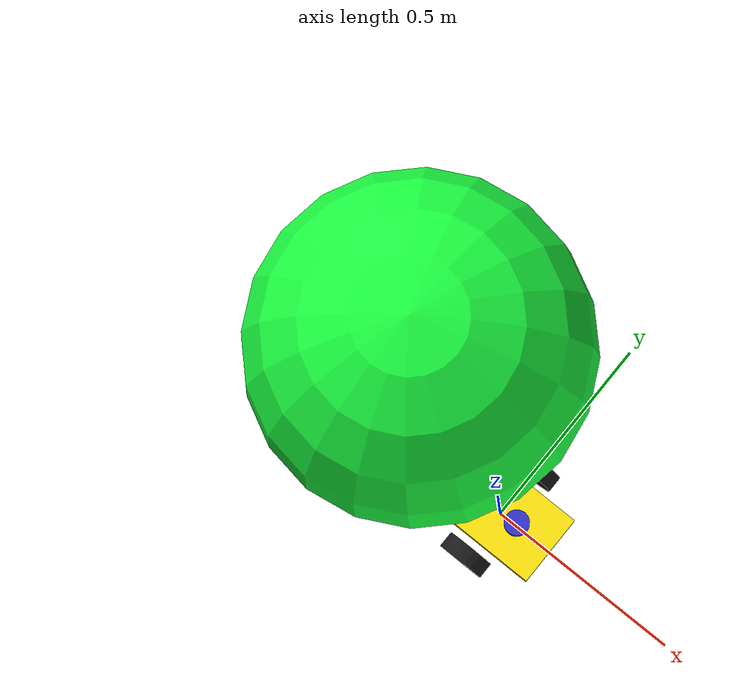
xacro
<?xml version="1.0"?>
<robot name="sewer_robot" xmlns:xacro="http://www.ros.org/wiki/xacro">

  <!-- Dimensions (metres / kg). Defaults chosen Day 2, see PLAN.md "Decisions made". -->
  <xacro:property name="chassis_l" value="0.30"/>
  <xacro:property name="chassis_w" value="0.18"/>
  <xacro:property name="chassis_h" value="0.08"/>
  <xacro:property name="chassis_m" value="4.0"/>
  <xacro:property name="wheel_r"   value="0.06"/>
  <xacro:property name="wheel_w"   value="0.04"/>
  <xacro:property name="wheel_m"   value="0.3"/>
  <xacro:property name="track"     value="0.26"/>  <!-- wheel centre to wheel centre -->
  <xacro:property name="caster_r"  value="0.03"/>
  <xacro:property name="caster_x"  value="0.12"/>
  <xacro:property name="caster_m"  value="0.05"/>

  <xacro:macro name="box_inertia" params="m x y z">
    <inertia ixx="${m*(y*y+z*z)/12}" ixy="0" ixz="0" iyy="${m*(x*x+z*z)/12}" iyz="0" izz="${m*(x*x+y*y)/12}"/>
  </xacro:macro>

  <!-- REP 105: base_footprint (on ground) -> base_link (wheel-axle height) -> sensors/wheels -->
  <link name="base_footprint">
    <inertial><mass value="0.001"/><inertia ixx="1e-6" ixy="0" ixz="0" iyy="1e-6" iyz="0" izz="1e-6"/></inertial>
  </link>

  <joint name="base_joint" type="fixed">
    <parent link="base_footprint"/><child link="base_link"/>
    <origin xyz="0 0 ${wheel_r}" rpy="0 0 0"/>
  </joint>
  <gazebo reference="base_joint"><preserveFixedJoint>true</preserveFixedJoint></gazebo>

  <link name="base_link">
    <visual>
      <origin xyz="0 0 0.01"/>
      <geometry><box size="${chassis_l} ${chassis_w} ${chassis_h}"/></geometry>
      <material name="body"><color rgba="1.0 0.9 0.05 1"/></material>
    </visual>
    <collision>
      <origin xyz="0 0 0.01"/>
      <geometry><box size="${chassis_l} ${chassis_w} ${chassis_h}"/></geometry>
    </collision>
    <inertial>
      <origin xyz="0 0 0.01"/><mass value="${chassis_m}"/>
      <xacro:box_inertia m="${chassis_m}" x="${chassis_l}" y="${chassis_w}" z="${chassis_h}"/>
    </inertial>
  </link>

  <!-- Wheels: continuous joints about y -->
  <xacro:macro name="wheel" params="name y">
    <link name="${name}_wheel_link">
      <visual>
        <origin rpy="${pi/2} 0 0"/>
        <geometry><cylinder radius="${wheel_r}" length="${wheel_w}"/></geometry>
        <material name="tyre"><color rgba="0.1 0.1 0.1 1"/></material>
      </visual>
      <!-- Sphere collision (visual stays a cylinder): a flat cylinder's contact patch scrubs at the
           inner edge when pivoting, shrinking the effective track by ~wheel_w (measured Day 3). -->
      <collision>
        <geometry><sphere radius="${wheel_r}"/></geometry>
      </collision>
      <inertial>
        <mass value="${wheel_m}"/>
        <inertia ixx="${wheel_m*(3*wheel_r*wheel_r+wheel_w*wheel_w)/12}" ixy="0" ixz="0"
                 iyy="${wheel_m*wheel_r*wheel_r/2}" iyz="0"
                 izz="${wheel_m*(3*wheel_r*wheel_r+wheel_w*wheel_w)/12}"/>
      </inertial>
    </link>
    <joint name="${name}_wheel_joint" type="continuous">
      <parent link="base_link"/><child link="${name}_wheel_link"/>
      <origin xyz="0 ${y} 0"/><axis xyz="0 1 0"/>
    </joint>
    <gazebo reference="${name}_wheel_link"><mu1>1.0</mu1><mu2>1.0</mu2></gazebo>
  </xacro:macro>
  <xacro:wheel name="left"  y="${ track/2}"/>
  <xacro:wheel name="right" y="${-track/2}"/>

  <!-- Frictionless ball casters front and back (passive support) -->
  <xacro:macro name="caster" params="name x">
    <link name="${name}_caster_link">
      <collision><geometry><sphere radius="${caster_r}"/></geometry></collision>
      <visual><geometry><sphere radius="${caster_r}"/></geometry></visual>
      <inertial>
        <mass value="${caster_m}"/>
        <inertia ixx="${0.4*caster_m*caster_r*caster_r}" ixy="0" ixz="0" iyy="${0.4*caster_m*caster_r*caster_r}" iyz="0" izz="${0.4*caster_m*caster_r*caster_r}"/>
      </inertial>
    </link>
    <joint name="${name}_caster_joint" type="fixed">
      <parent link="base_link"/><child link="${name}_caster_link"/>
      <origin xyz="${x} 0 ${caster_r-wheel_r}"/>
    </joint>
    <gazebo reference="${name}_caster_link"><mu1>0.0</mu1><mu2>0.0</mu2></gazebo>
  </xacro:macro>
  <xacro:caster name="front" x="${caster_x}"/>
  <xacro:caster name="rear"  x="${-caster_x}"/>

  <!-- IMU at chassis centre -->
  <link name="imu_link"/>
  <joint name="imu_joint" type="fixed">
    <parent link="base_link"/><child link="imu_link"/><origin xyz="0 0 0.02"/>
  </joint>

  <!-- 2D LiDAR on top, slightly forward -->
  <link name="lidar_link">
    <visual><geometry><cylinder radius="0.03" length="0.04"/></geometry>
      <material name="lidar"><color rgba="0.2 0.2 0.8 1"/></material></visual>
  </link>
  <joint name="lidar_joint" type="fixed">
    <parent link="base_link"/><child link="lidar_link"/><origin xyz="0.05 0 0.07"/>
  </joint>

  <link name="beacon_link">
    <visual>
      <origin xyz="0 0 0.8"/>
      <geometry><cylinder radius="0.015" length="1.6"/></geometry>
      <material name="mast"><color rgba="0.9 0.9 0.9 1"/></material>
    </visual>
    <visual>
      <origin xyz="0 0 1.65"/>
      <geometry><sphere radius="0.22"/></geometry>
      <material name="ball"><color rgba="0.1 1.0 0.25 1"/></material>
    </visual>
  </link>
  <joint name="beacon_joint" type="fixed">
    <parent link="base_link"/><child link="beacon_link"/><origin xyz="-0.1 0 0.2"/>
  </joint>

  <link name="camera_link"/>
  <joint name="camera_joint" type="fixed">
    <parent link="base_link"/><child link="camera_link"/><origin xyz="0.16 0 0.05" rpy="0 0.05 0"/>
  </joint>
  <link name="chase_cam_link"/>
  <joint name="chase_cam_joint" type="fixed">
    <parent link="base_link"/><child link="chase_cam_link"/><origin xyz="-0.75 0 0.55" rpy="0 0.5 0"/>
  </joint>

  <!-- ===== Gazebo (SIMULATED) ===== -->
  <gazebo>
    <!-- Wheel odometry + cmd_vel. Odom is integrated from wheel joints; noise/slip injection comes later. -->
    <plugin filename="gz-sim-diff-drive-system" name="gz::sim::systems::DiffDrive">
      <left_joint>left_wheel_joint</left_joint>
      <right_joint>right_wheel_joint</right_joint>
      <wheel_separation>${track}</wheel_separation>
      <wheel_radius>${wheel_r}</wheel_radius>
      <max_linear_acceleration>1.0</max_linear_acceleration>
      <max_angular_acceleration>2.0</max_angular_acceleration>
      <topic>cmd_vel</topic>
      <odom_topic>odom</odom_topic>
      <tf_topic>tf</tf_topic>
      <frame_id>odom</frame_id>
      <child_frame_id>base_footprint</child_frame_id>
      <odom_publish_frequency>50</odom_publish_frequency>
    </plugin>
    <plugin filename="gz-sim-joint-state-publisher-system" name="gz::sim::systems::JointStatePublisher">
      <topic>joint_states</topic>
      <joint_name>left_wheel_joint</joint_name>
      <joint_name>right_wheel_joint</joint_name>
    </plugin>
    <!-- TRUE pose from the physics engine. Evaluation only, never fed to a filter. -->
    <plugin filename="gz-sim-odometry-publisher-system" name="gz::sim::systems::OdometryPublisher">
      <odom_frame>world</odom_frame>
      <robot_base_frame>base_footprint</robot_base_frame>
      <odom_topic>ground_truth/odom</odom_topic>
      <tf_topic>ground_truth/tf</tf_topic>
      <dimensions>2</dimensions>
      <odom_publish_frequency>50</odom_publish_frequency>
    </plugin>
  </gazebo>

  <gazebo reference="imu_link">
    <sensor name="imu" type="imu">
      <always_on>true</always_on>
      <update_rate>100</update_rate>
      <topic>imu</topic>
      <gz_frame_id>imu_link</gz_frame_id>
      <imu>
        <angular_velocity>
          <x><noise type="gaussian"><mean>0</mean><stddev>0.002</stddev></noise></x>
          <y><noise type="gaussian"><mean>0</mean><stddev>0.002</stddev></noise></y>
          <z><noise type="gaussian"><mean>0</mean><stddev>0.002</stddev></noise></z>
        </angular_velocity>
        <linear_acceleration>
          <x><noise type="gaussian"><mean>0</mean><stddev>0.017</stddev></noise></x>
          <y><noise type="gaussian"><mean>0</mean><stddev>0.017</stddev></noise></y>
          <z><noise type="gaussian"><mean>0</mean><stddev>0.017</stddev></noise></z>
        </linear_acceleration>
      </imu>
    </sensor>
  </gazebo>

  <xacro:macro name="contact_sensor" params="link collision">
    <gazebo reference="${link}">
      <sensor name="${link}_contact" type="contact">
        <always_on>true</always_on>
        <update_rate>20</update_rate>
        <contact><collision>${collision}</collision></contact>
      </sensor>
    </gazebo>
  </xacro:macro>
  <xacro:contact_sensor link="base_link" collision="base_link_collision"/>
  <xacro:contact_sensor link="left_wheel_link" collision="left_wheel_link_collision"/>
  <xacro:contact_sensor link="right_wheel_link" collision="right_wheel_link_collision"/>

  <gazebo reference="camera_link">
    <sensor name="robot_cam" type="camera">
      <always_on>true</always_on>
      <update_rate>10</update_rate>
      <topic>robot_cam/image</topic>
      <gz_frame_id>camera_link</gz_frame_id>
      <camera>
        <horizontal_fov>1.5</horizontal_fov>
        <image><width>640</width><height>360</height></image>
        <clip><near>0.05</near><far>30</far></clip>
      </camera>
    </sensor>
  </gazebo>

  <gazebo reference="chase_cam_link">
    <sensor name="chase_cam" type="camera">
      <always_on>true</always_on>
      <update_rate>10</update_rate>
      <topic>chase_cam/image</topic>
      <gz_frame_id>chase_cam_link</gz_frame_id>
      <camera>
        <horizontal_fov>1.2</horizontal_fov>
        <image><width>640</width><height>360</height></image>
        <clip><near>0.05</near><far>40</far></clip>
      </camera>
    </sensor>
  </gazebo>

  <gazebo reference="lidar_link">
    <sensor name="lidar" type="gpu_lidar">
      <always_on>true</always_on>
      <update_rate>10</update_rate>
      <topic>scan</topic>
      <gz_frame_id>lidar_link</gz_frame_id>
      <lidar>
        <scan><horizontal>
          <samples>360</samples><resolution>1</resolution>
          <min_angle>-3.14159</min_angle><max_angle>3.14159</max_angle>
        </horizontal></scan>
        <range><min>0.12</min><max>8.0</max><resolution>0.01</resolution></range>
        <noise><type>gaussian</type><mean>0.0</mean><stddev>0.01</stddev></noise>
      </lidar>
    </sensor>
  </gazebo>
</robot>
